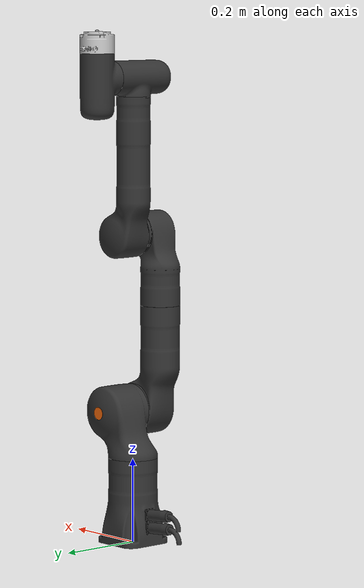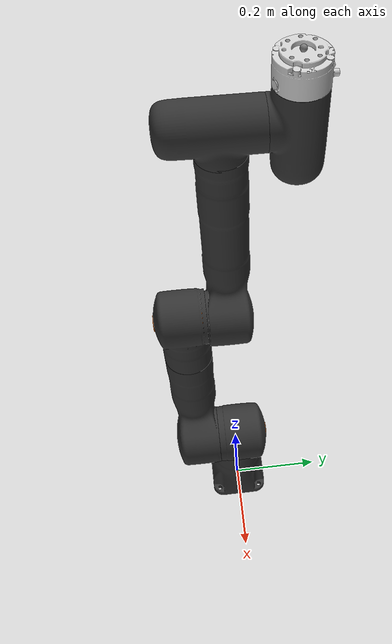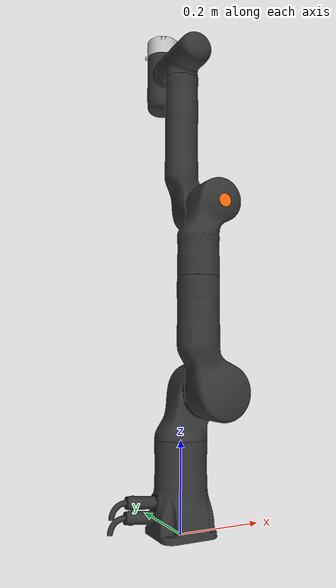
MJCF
<mujoco model="kr2_robot_a810">
  <compiler angle="radian" meshdir="meshes/a810"/>

  <asset>
    <mesh name="a810_Base" content_type="model/stl" file="a810_Base.stl" scale="0.001 0.001 0.001"/>
    <mesh name="a810_Link2" content_type="model/stl" file="a810_Link2.stl" scale="0.001 0.001 0.001"/>
    <mesh name="a810_Link3" content_type="model/stl" file="a810_Link3.stl" scale="0.001 0.001 0.001"/>
    <mesh name="a810_Link4" content_type="model/stl" file="a810_Link4.stl" scale="0.001 0.001 0.001"/>
    <mesh name="a810_Link5" content_type="model/stl" file="a810_Link5.stl" scale="0.001 0.001 0.001"/>
    <mesh name="a810_Link6" content_type="model/stl" file="a810_Link6.stl" scale="0.001 0.001 0.001"/>
    <mesh name="a810_Link7" content_type="model/stl" file="a810_Link7.stl" scale="0.001 0.001 0.001"/>
    <mesh name="a810_ToolIO" content_type="model/stl" file="a810_ToolIO.stl" scale="0.001 0.001 0.001"/>
  </asset>

  <worldbody>
    <geom type="mesh" rgba="0.2 0.2 0.2 1" mesh="a810_Base"/>
    <body name="link1" pos="0 0 0.035">
      <inertial pos="0 0 0.13685" mass="4.58" diaginertia="0.003 0.003 0.003"/>
      <joint name="joint_1" pos="0 0 0" axis="0 0 1" range="-6.28319 6.28319" actuatorfrcrange="-204 204" damping="0.1"/>
      <geom pos="0 0 0.169" quat="1 0 0 0" type="mesh" rgba="0.2 0.2 0.2 1" mesh="a810_Link2"/>
      <body name="linkJ2" pos="0.05 0 0.2737">
        <inertial pos="-0.0032925 -0.00564334 0.0115237" quat="0.966517 0.223952 -0.122026 -0.0282748" mass="6.53" diaginertia="0.022256 0.022256 0.006"/>
        <joint name="joint_2" pos="0 0 0" axis="0 1 0" range="-1.22173 3.14159" actuatorfrcrange="-204 204" damping="0.1"/>
        <geom size="0.015 0.075" pos="0 -0.01 0" quat="0.707107 0.707107 0 0" type="cylinder" rgba="1 0.423529 0.0392157 1"/>
        <geom pos="-0.001 -0.0857 0" quat="0.5 -0.5 0.5 -0.5" type="mesh" rgba="0.2 0.2 0.2 1" mesh="a810_Link3"/>
        <body name="link3" pos="-0.05 -0.0857 0.274">
          <inertial pos="0 0 0" mass="2.9" diaginertia="0.003 0.003 0.003"/>
          <joint name="joint_3" pos="0 0 0" axis="0 0 1" range="-6.28319 6.28319" actuatorfrcrange="-85 85" damping="0.1"/>
          <geom pos="-0.05 0 0.315" quat="0.5 0.5 -0.5 -0.5" type="mesh" rgba="0.2 0.2 0.2 1" mesh="a810_Link4"/>
          <body name="linkJ4" pos="0.04 0 0.1429">
            <inertial pos="-0.00319613 0.0126965 0.0134237" quat="0.971184 -0.213337 -0.103774 0.0227958" mass="4.13" diaginertia="0.0168816 0.0168816 0.006"/>
            <joint name="joint_4" pos="0 0 0" axis="0 1 0" range="-1.22173 3.14159" actuatorfrcrange="-85 85" damping="0.1"/>
            <geom size="0.015 0.0645" pos="0 0.013 0" quat="0.707107 0.707107 0 0" type="cylinder" rgba="1 0.423529 0.0392157 1"/>
            <geom pos="0 0.08455 0" quat="0.5 -0.5 -0.5 0.5" type="mesh" rgba="0.2 0.2 0.2 1" mesh="a810_Link5"/>
            <body name="link5" pos="-0.04 0.08405 0.271">
              <inertial pos="0 0 0" mass="1.7" diaginertia="0.003 0.003 0.003"/>
              <joint name="joint_5" pos="0 0 0" axis="0 0 1" range="-6.28319 6.28319" actuatorfrcrange="-51 51" damping="0.1"/>
              <geom pos="0 0.002 0.1035" quat="0.707107 0 0 -0.707107" type="mesh" rgba="0.2 0.2 0.2 1" mesh="a810_Link6"/>
              <body name="linkJ6" pos="0 0 0.1035">
                <inertial pos="0 0.0575 0.002" quat="0.693773 0.720193 0 0" mass="3.6" diaginertia="0.0163185 0.0163185 0.006"/>
                <joint name="joint_6" pos="0 0 0" axis="0 1 0" range="-6.28319 6.28319" actuatorfrcrange="-51 51" damping="0.1"/>
                <geom pos="0 0.111 0" type="mesh" rgba="0.2 0.2 0.2 1" mesh="a810_Link7"/>
                <body name="end_effector" pos="0 0.111 0.108">
                  <inertial pos="0 0 -0.0197" mass="0.56" diaginertia="0.003 0.003 0.003"/>
                  <joint name="joint_7" pos="0 0 0" axis="0 0 1" range="-6.28319 6.28319" actuatorfrcrange="-51 51" damping="0.1"/>
                  <geom type="mesh" rgba="0.8 0.8 0.8 1" mesh="a810_ToolIO"/>
                  <site name="ee_site" pos="0 0 0" quat="1 0 0 0" size="0.005"/>
                </body>
              </body>
            </body>
          </body>
        </body>
      </body>
    </body>
  </worldbody>
</mujoco>
